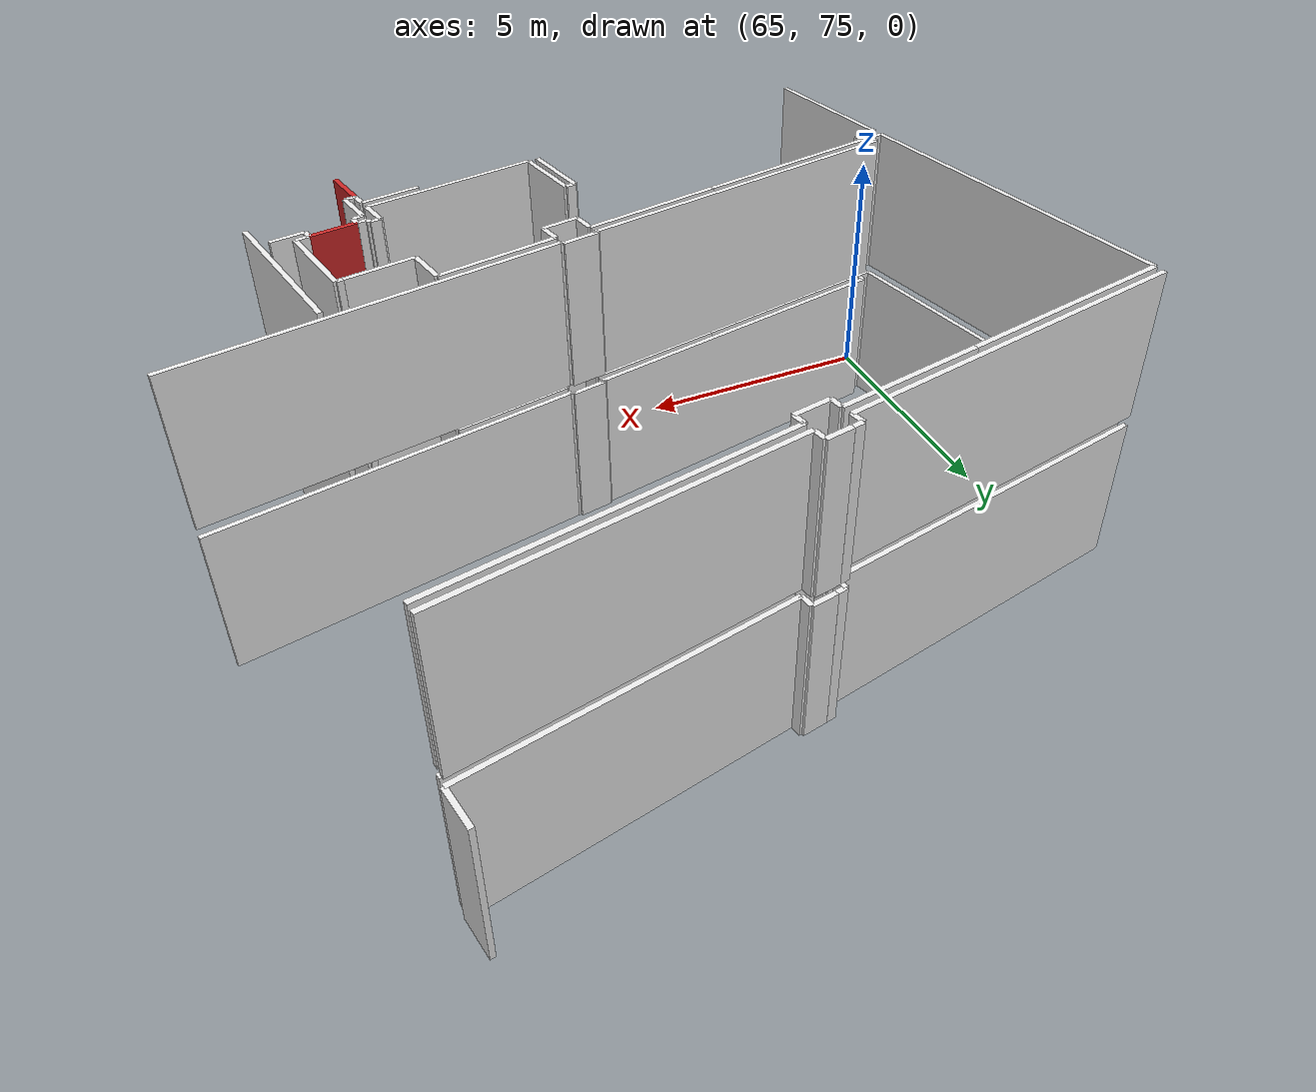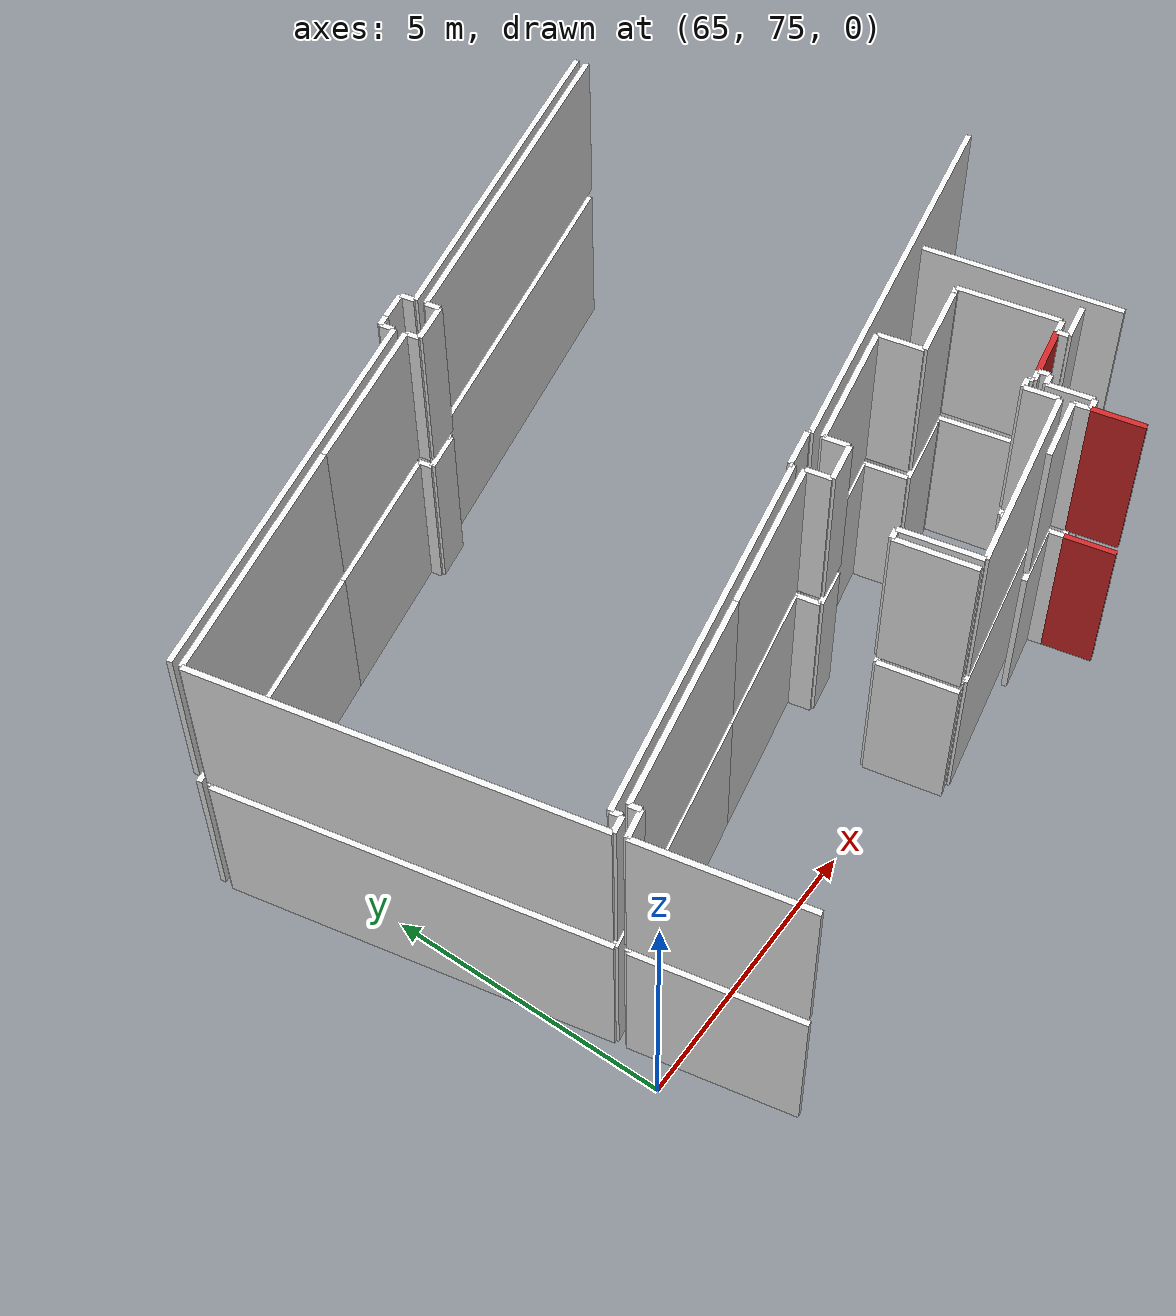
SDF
<sdf version="1.6">
 <world name="default">
  <model name="wall_76.4_75.6_0.0">
   <static>true</static>
   <pose>76.39000000001397 75.57500000018626 1.5 0 0 0.19083110263865674</pose>
   <link name="link">
    <visual name="visual">
     <geometry><box><size>0.8962700485807075 0.1 3</size></box></geometry>
     <material>
      <script><uri>file://media/materials/scripts/gazebo.material</uri><name>Gazebo/Red</name></script>
     </material>
    </visual>
   </link>
  </model>
  <model name="wall_75.8_74.0_0.0">
   <static>true</static>
   <pose>75.83999999999651 74.0 1.5 0 0 -1.3690339824572944</pose>
   <link name="link">
    <visual name="visual">
     <geometry><box><size>0.8982204628045334 0.1 3</size></box></geometry>
     <material>
      <script><uri>file://media/materials/scripts/gazebo.material</uri><name>Gazebo/Red</name></script>
     </material>
    </visual>
   </link>
  </model>
  <model name="wall_77.5_76.7_0.0">
   <static>true</static>
   <pose>77.5 76.67500000004657 1.5 0 0 1.7653199818507113</pose>
   <link name="link">
    <visual name="visual">
     <geometry><box><size>3.414395993534876 0.1 3</size></box></geometry>
     <material>
      <script><uri>file://media/materials/scripts/gazebo.material</uri><name>Gazebo/White</name></script>
     </material>
    </visual>
   </link>
  </model>
  <model name="wall_67.4_83.5_0.0">
   <static>true</static>
   <pose>67.40499999999884 83.54000000003725 1.5 0 0 0.1954353271778743</pose>
   <link name="link">
    <visual name="visual">
     <geometry><box><size>7.003320641070759 0.1 3</size></box></geometry>
     <material>
      <script><uri>file://media/materials/scripts/gazebo.material</uri><name>Gazebo/White</name></script>
     </material>
    </visual>
   </link>
  </model>
  <model name="wall_70.8_84.3_0.0">
   <static>true</static>
   <pose>70.81500000000233 84.34000000008382 1.5 0 0 1.7761917163720695</pose>
   <link name="link">
    <visual name="visual">
     <geometry><box><size>0.24515301321506852 0.1 3</size></box></geometry>
     <material>
      <script><uri>file://media/materials/scripts/gazebo.material</uri><name>Gazebo/White</name></script>
     </material>
    </visual>
   </link>
  </model>
  <model name="wall_70.9_84.5_0.0">
   <static>true</static>
   <pose>70.88499999998021 84.47999999998137 1.5 0 0 0.20749622662047904</pose>
   <link name="link">
    <visual name="visual">
     <geometry><box><size>0.19416487839942884 0.1 3</size></box></geometry>
     <material>
      <script><uri>file://media/materials/scripts/gazebo.material</uri><name>Gazebo/White</name></script>
     </material>
    </visual>
   </link>
  </model>
  <model name="wall_71.2_84.5_0.0">
   <static>true</static>
   <pose>71.22499999997672 84.5449999999255 1.5 0 0 0.18164882970920815</pose>
   <link name="link">
    <visual name="visual">
     <geometry><box><size>0.49819674824716687 0.1 3</size></box></geometry>
     <material>
      <script><uri>file://media/materials/scripts/gazebo.material</uri><name>Gazebo/White</name></script>
     </material>
    </visual>
   </link>
  </model>
  <model name="wall_71.5_84.5_0.0">
   <static>true</static>
   <pose>71.49499999999534 84.46499999985099 1.5 0 0 -1.3734007667659154</pose>
   <link name="link">
    <visual name="visual">
     <geometry><box><size>0.2549509756887716 0.1 3</size></box></geometry>
     <material>
      <script><uri>file://media/materials/scripts/gazebo.material</uri><name>Gazebo/White</name></script>
     </material>
    </visual>
   </link>
  </model>
  <model name="wall_74.5_84.9_0.0">
   <static>true</static>
   <pose>74.52000000001863 84.93499999982305 1.5 0 0 0.19579248330455945</pose>
   <link name="link">
    <visual name="visual">
     <geometry><box><size>6.116870114680138 0.1 3</size></box></geometry>
     <material>
      <script><uri>file://media/materials/scripts/gazebo.material</uri><name>Gazebo/White</name></script>
     </material>
    </visual>
   </link>
  </model>
  <model name="wall_77.4_85.9_0.0">
   <static>true</static>
   <pose>77.44500000000698 85.9199999999255 1.5 0 0 1.7607846146803983</pose>
   <link name="link">
    <visual name="visual">
     <geometry><box><size>0.7942921379528988 0.1 3</size></box></geometry>
     <material>
      <script><uri>file://media/materials/scripts/gazebo.material</uri><name>Gazebo/White</name></script>
     </material>
    </visual>
   </link>
  </model>
  <model name="wall_74.6_84.7_0.0">
   <static>true</static>
   <pose>74.55499999999302 84.74499999987893 1.5 0 0 -2.945481614557841</pose>
   <link name="link">
    <visual name="visual">
     <geometry><box><size>6.107061486488853 0.1 3</size></box></geometry>
     <material>
      <script><uri>file://media/materials/scripts/gazebo.material</uri><name>Gazebo/White</name></script>
     </material>
    </visual>
   </link>
  </model>
  <model name="wall_71.6_84.0_0.0">
   <static>true</static>
   <pose>71.58499999999185 84.03000000002794 1.5 0 0 -1.365400937450167</pose>
   <link name="link">
    <visual name="visual">
     <geometry><box><size>0.24515301320319682 0.1 3</size></box></geometry>
     <material>
      <script><uri>file://media/materials/scripts/gazebo.material</uri><name>Gazebo/White</name></script>
     </material>
    </visual>
   </link>
  </model>
  <model name="wall_71.3_83.8_0.0">
   <static>true</static>
   <pose>71.26999999998952 83.84499999997206 1.5 0 0 -2.9526954722081817</pose>
   <link name="link">
    <visual name="visual">
     <geometry><box><size>0.6923149572864328 0.1 3</size></box></geometry>
     <material>
      <script><uri>file://media/materials/scripts/gazebo.material</uri><name>Gazebo/White</name></script>
     </material>
    </visual>
   </link>
  </model>
  <model name="wall_70.9_83.9_0.0">
   <static>true</static>
   <pose>70.90499999999884 83.89999999990687 1.5 0 0 1.7761917157522207</pose>
   <link name="link">
    <visual name="visual">
     <geometry><box><size>0.24515301365907008 0.1 3</size></box></geometry>
     <material>
      <script><uri>file://media/materials/scripts/gazebo.material</uri><name>Gazebo/White</name></script>
     </material>
    </visual>
   </link>
  </model>
  <model name="wall_69.5_83.8_0.0">
   <static>true</static>
   <pose>69.54999999998836 83.76000000000931 1.5 0 0 -2.948538600466728</pose>
   <link name="link">
    <visual name="visual">
     <geometry><box><size>2.7103505308710134 0.1 3</size></box></geometry>
     <material>
      <script><uri>file://media/materials/scripts/gazebo.material</uri><name>Gazebo/White</name></script>
     </material>
    </visual>
   </link>
  </model>
  <model name="wall_66.1_83.1_0.0">
   <static>true</static>
   <pose>66.10999999998603 83.0800000000745 1.5 0 0 -2.9451086705483704</pose>
   <link name="link">
    <visual name="visual">
     <geometry><box><size>4.30278979262453 0.1 3</size></box></geometry>
     <material>
      <script><uri>file://media/materials/scripts/gazebo.material</uri><name>Gazebo/White</name></script>
     </material>
    </visual>
   </link>
  </model>
  <model name="wall_64.7_79.3_0.0">
   <static>true</static>
   <pose>64.66500000000815 79.34000000008382 1.5 0 0 -1.3731111637109774</pose>
   <link name="link">
    <visual name="visual">
     <geometry><box><size>6.771890430431879 0.1 3</size></box></geometry>
     <material>
      <script><uri>file://media/materials/scripts/gazebo.material</uri><name>Gazebo/White</name></script>
     </material>
    </visual>
   </link>
  </model>
  <model name="wall_65.5_76.1_0.0">
   <static>true</static>
   <pose>65.48000000001048 76.05000000004657 1.5 0 0 0.19739556003644376</pose>
   <link name="link">
    <visual name="visual">
     <geometry><box><size>0.30594117081511046 0.1 3</size></box></geometry>
     <material>
      <script><uri>file://media/materials/scripts/gazebo.material</uri><name>Gazebo/White</name></script>
     </material>
    </visual>
   </link>
  </model>
  <model name="wall_65.6_76.2_0.0">
   <static>true</static>
   <pose>65.61000000001513 76.1699999999255 1.5 0 0 1.7894652729085172</pose>
   <link name="link">
    <visual name="visual">
     <geometry><box><size>0.18439088885038563 0.1 3</size></box></geometry>
     <material>
      <script><uri>file://media/materials/scripts/gazebo.material</uri><name>Gazebo/White</name></script>
     </material>
    </visual>
   </link>
  </model>
  <model name="wall_68.9_76.9_0.0">
   <static>true</static>
   <pose>68.88000000000466 76.91499999980442 1.5 0 0 0.19651862351580723</pose>
   <link name="link">
    <visual name="visual">
     <geometry><box><size>6.709135562767745 0.1 3</size></box></geometry>
     <material>
      <script><uri>file://media/materials/scripts/gazebo.material</uri><name>Gazebo/White</name></script>
     </material>
    </visual>
   </link>
  </model>
  <model name="wall_72.2_77.6_0.0">
   <static>true</static>
   <pose>72.16499999997905 77.59499999997206 1.5 0 0 1.7681918857492749</pose>
   <link name="link">
    <visual name="visual">
     <geometry><box><size>0.05099019541172539 0.1 3</size></box></geometry>
     <material>
      <script><uri>file://media/materials/scripts/gazebo.material</uri><name>Gazebo/White</name></script>
     </material>
    </visual>
   </link>
  </model>
  <model name="wall_72.5_77.7_0.0">
   <static>true</static>
   <pose>72.5 77.68500000005588 1.5 0 0 0.18889718070517353</pose>
   <link name="link">
    <visual name="visual">
     <geometry><box><size>0.6923149572561651 0.1 3</size></box></geometry>
     <material>
      <script><uri>file://media/materials/scripts/gazebo.material</uri><name>Gazebo/White</name></script>
     </material>
    </visual>
   </link>
  </model>
  <model name="wall_72.8_77.7_0.0">
   <static>true</static>
   <pose>72.84500000000116 77.72500000009313 1.5 0 0 -1.3734007671688915</pose>
   <link name="link">
    <visual name="visual">
     <geometry><box><size>0.05099019494369148 0.1 3</size></box></geometry>
     <material>
      <script><uri>file://media/materials/scripts/gazebo.material</uri><name>Gazebo/White</name></script>
     </material>
    </visual>
   </link>
  </model>
  <model name="wall_76.3_78.4_0.0">
   <static>true</static>
   <pose>76.33999999999651 78.39000000013039 1.5 0 0 0.19519049174249012</pose>
   <link name="link">
    <visual name="visual">
     <geometry><box><size>7.115110680814747 0.1 3</size></box></geometry>
     <material>
      <script><uri>file://media/materials/scripts/gazebo.material</uri><name>Gazebo/White</name></script>
     </material>
    </visual>
   </link>
  </model>
  <model name="wall_65.6_74.4_0.0">
   <static>true</static>
   <pose>65.64999999999418 74.41499999980442 1.5 0 0 -1.3740852295395196</pose>
   <link name="link">
    <visual name="visual">
     <geometry><box><size>2.8652574055940305 0.1 3</size></box></geometry>
     <material>
      <script><uri>file://media/materials/scripts/gazebo.material</uri><name>Gazebo/White</name></script>
     </material>
    </visual>
   </link>
  </model>
  <model name="wall_72.0_74.9_0.0">
   <static>true</static>
   <pose>71.97500000000582 74.9199999999255 1.5 0 0 1.7640078106303387</pose>
   <link name="link">
    <visual name="visual">
     <geometry><box><size>1.4061649973136765 0.1 3</size></box></geometry>
     <material>
      <script><uri>file://media/materials/scripts/gazebo.material</uri><name>Gazebo/White</name></script>
     </material>
    </visual>
   </link>
  </model>
  <model name="wall_71.9_75.6_0.0">
   <static>true</static>
   <pose>71.93500000002678 75.62999999988824 1.5 0 0 0.20749622662047904</pose>
   <link name="link">
    <visual name="visual">
     <geometry><box><size>0.19416487839942884 0.1 3</size></box></geometry>
     <material>
      <script><uri>file://media/materials/scripts/gazebo.material</uri><name>Gazebo/White</name></script>
     </material>
    </visual>
   </link>
  </model>
  <model name="wall_72.2_75.0_0.0">
   <static>true</static>
   <pose>72.1700000000128 74.95999999996275 1.5 0 0 -1.3706152588342921</pose>
   <link name="link">
    <visual name="visual">
     <geometry><box><size>1.408119313011009 0.1 3</size></box></geometry>
     <material>
      <script><uri>file://media/materials/scripts/gazebo.material</uri><name>Gazebo/White</name></script>
     </material>
    </visual>
   </link>
  </model>
  <model name="wall_74.0_74.6_0.0">
   <static>true</static>
   <pose>73.98000000001048 74.60000000009313 1.5 0 0 0.19509141650355566</pose>
   <link name="link">
    <visual name="visual">
     <geometry><box><size>3.404585143650806 0.1 3</size></box></geometry>
     <material>
      <script><uri>file://media/materials/scripts/gazebo.material</uri><name>Gazebo/White</name></script>
     </material>
    </visual>
   </link>
  </model>
  <model name="wall_75.6_75.2_0.0">
   <static>true</static>
   <pose>75.59000000002561 75.21999999997206 1.5 0 0 1.7748143065135507</pose>
   <link name="link">
    <visual name="visual">
     <geometry><box><size>0.5922837154144474 0.1 3</size></box></geometry>
     <material>
      <script><uri>file://media/materials/scripts/gazebo.material</uri><name>Gazebo/White</name></script>
     </material>
    </visual>
   </link>
  </model>
  <model name="wall_75.6_75.5_0.0">
   <static>true</static>
   <pose>75.63000000000466 75.52999999979511 1.5 0 0 0.1973955600737564</pose>
   <link name="link">
    <visual name="visual">
     <geometry><box><size>0.20396078050535543 0.1 3</size></box></geometry>
     <material>
      <script><uri>file://media/materials/scripts/gazebo.material</uri><name>Gazebo/White</name></script>
     </material>
    </visual>
   </link>
  </model>
  <model name="wall_75.7_75.5_0.0">
   <static>true</static>
   <pose>75.73999999999069 75.5 1.5 0 0 -1.3734007660495133</pose>
   <link name="link">
    <visual name="visual">
     <geometry><box><size>0.10198038991021388 0.1 3</size></box></geometry>
     <material>
      <script><uri>file://media/materials/scripts/gazebo.material</uri><name>Gazebo/White</name></script>
     </material>
    </visual>
   </link>
  </model>
  <model name="wall_75.9_75.5_0.0">
   <static>true</static>
   <pose>75.85000000000582 75.47000000020489 1.5 0 0 0.19739556001778746</pose>
   <link name="link">
    <visual name="visual">
     <geometry><box><size>0.20396078056243275 0.1 3</size></box></geometry>
     <material>
      <script><uri>file://media/materials/scripts/gazebo.material</uri><name>Gazebo/White</name></script>
     </material>
    </visual>
   </link>
  </model>
  <model name="wall_77.0_75.7_0.0">
   <static>true</static>
   <pose>76.9550000000163 75.68500000005588 1.5 0 0 0.19739555913347878</pose>
   <link name="link">
    <visual name="visual">
     <geometry><box><size>0.25495097564310976 0.1 3</size></box></geometry>
     <material>
      <script><uri>file://media/materials/scripts/gazebo.material</uri><name>Gazebo/White</name></script>
     </material>
    </visual>
   </link>
  </model>
  <model name="wall_76.9_76.6_0.0">
   <static>true</static>
   <pose>76.90499999999884 76.5800000000745 1.5 0 0 1.7692968585652145</pose>
   <link name="link">
    <visual name="visual">
     <geometry><box><size>1.774852106740809 0.1 3</size></box></geometry>
     <material>
      <script><uri>file://media/materials/scripts/gazebo.material</uri><name>Gazebo/White</name></script>
     </material>
    </visual>
   </link>
  </model>
  <model name="wall_76.7_77.4_0.0">
   <static>true</static>
   <pose>76.6699999999837 77.43500000005588 1.5 0 0 -2.896613988408541</pose>
   <link name="link">
    <visual name="visual">
     <geometry><box><size>0.12369316882725834 0.1 3</size></box></geometry>
     <material>
      <script><uri>file://media/materials/scripts/gazebo.material</uri><name>Gazebo/White</name></script>
     </material>
    </visual>
   </link>
  </model>
  <model name="wall_76.0_77.3_0.0">
   <static>true</static>
   <pose>75.95999999999185 77.2949999999255 1.5 0 0 -2.9516043656694166</pose>
   <link name="link">
    <visual name="visual">
     <geometry><box><size>1.3238202294759405 0.1 3</size></box></geometry>
     <material>
      <script><uri>file://media/materials/scripts/gazebo.material</uri><name>Gazebo/White</name></script>
     </material>
    </visual>
   </link>
  </model>
  <model name="wall_75.2_77.6_0.0">
   <static>true</static>
   <pose>75.23000000001048 77.56000000005588 1.5 0 0 1.7731179550758815</pose>
   <link name="link">
    <visual name="visual">
     <geometry><box><size>0.7962411697460803 0.1 3</size></box></geometry>
     <material>
      <script><uri>file://media/materials/scripts/gazebo.material</uri><name>Gazebo/White</name></script>
     </material>
    </visual>
   </link>
  </model>
  <model name="wall_74.0_77.7_0.0">
   <static>true</static>
   <pose>74.02000000001863 77.72500000009313 1.5 0 0 -2.9450481572857363</pose>
   <link name="link">
    <visual name="visual">
     <geometry><box><size>2.3043654224557644 0.1 3</size></box></geometry>
     <material>
      <script><uri>file://media/materials/scripts/gazebo.material</uri><name>Gazebo/White</name></script>
     </material>
    </visual>
   </link>
  </model>
  <model name="wall_72.9_77.3_0.0">
   <static>true</static>
   <pose>72.93499999999767 77.28499999991618 1.5 0 0 -1.364472432915976</pose>
   <link name="link">
    <visual name="visual">
     <geometry><box><size>0.4393176528871807 0.1 3</size></box></geometry>
     <material>
      <script><uri>file://media/materials/scripts/gazebo.material</uri><name>Gazebo/White</name></script>
     </material>
    </visual>
   </link>
  </model>
  <model name="wall_72.6_77.0_0.0">
   <static>true</static>
   <pose>72.63499999998021 77.00499999988824 1.5 0 0 -2.9553698133356825</pose>
   <link name="link">
    <visual name="visual">
     <geometry><box><size>0.7021395872432744 0.1 3</size></box></geometry>
     <material>
      <script><uri>file://media/materials/scripts/gazebo.material</uri><name>Gazebo/White</name></script>
     </material>
    </visual>
   </link>
  </model>
  <model name="wall_72.2_77.2_0.0">
   <static>true</static>
   <pose>72.24499999999534 77.15999999991618 1.5 0 0 1.77255867106901</pose>
   <link name="link">
    <visual name="visual">
     <geometry><box><size>0.44911023139643436 0.1 3</size></box></geometry>
     <material>
      <script><uri>file://media/materials/scripts/gazebo.material</uri><name>Gazebo/White</name></script>
     </material>
    </visual>
   </link>
  </model>
  <model name="wall_70.9_77.1_0.0">
   <static>true</static>
   <pose>70.875 77.11499999999069 1.5 0 0 -2.9441970938159456</pose>
   <link name="link">
    <visual name="visual">
     <geometry><box><size>2.702480342186824 0.1 3</size></box></geometry>
     <material>
      <script><uri>file://media/materials/scripts/gazebo.material</uri><name>Gazebo/White</name></script>
     </material>
    </visual>
   </link>
  </model>
  <model name="wall_67.7_76.5_0.0">
   <static>true</static>
   <pose>67.68499999999767 76.47999999998137 1.5 0 0 -2.945744281719576</pose>
   <link name="link">
    <visual name="visual">
     <geometry><box><size>3.8026964117835984 0.1 3</size></box></geometry>
     <material>
      <script><uri>file://media/materials/scripts/gazebo.material</uri><name>Gazebo/White</name></script>
     </material>
    </visual>
   </link>
  </model>
  <model name="wall_65.8_76.0_0.0">
   <static>true</static>
   <pose>65.83999999999651 76.01499999989755 1.5 0 0 -1.363300100406013</pose>
   <link name="link">
    <visual name="visual">
     <geometry><box><size>0.19416487833047835 0.1 3</size></box></geometry>
     <material>
      <script><uri>file://media/materials/scripts/gazebo.material</uri><name>Gazebo/White</name></script>
     </material>
    </visual>
   </link>
  </model>
  <model name="wall_65.6_75.9_0.0">
   <static>true</static>
   <pose>65.61499999999069 75.86999999987893 1.5 0 0 -2.9402755450289626</pose>
   <link name="link">
    <visual name="visual">
     <geometry><box><size>0.5000999900114971 0.1 3</size></box></geometry>
     <material>
      <script><uri>file://media/materials/scripts/gazebo.material</uri><name>Gazebo/White</name></script>
     </material>
    </visual>
   </link>
  </model>
  <model name="wall_75.7_74.6_0.0">
   <static>true</static>
   <pose>75.72000000000116 74.58499999996275 1.5 0 0 1.7748143063542596</pose>
   <link name="link">
    <visual name="visual">
     <geometry><box><size>0.2961418579352255 0.1 3</size></box></geometry>
     <material>
      <script><uri>file://media/materials/scripts/gazebo.material</uri><name>Gazebo/White</name></script>
     </material>
    </visual>
   </link>
  </model>
  <model name="wall_75.1_74.6_0.0">
   <static>true</static>
   <pose>75.13500000000931 74.61999999987893 1.5 0 0 -2.945930194077732</pose>
   <link name="link">
    <visual name="visual">
     <geometry><box><size>1.131591799218755 0.1 3</size></box></geometry>
     <material>
      <script><uri>file://media/materials/scripts/gazebo.material</uri><name>Gazebo/White</name></script>
     </material>
    </visual>
   </link>
  </model>
  <model name="wall_76.0_75.4_0.0">
   <static>true</static>
   <pose>75.97000000000116 75.39500000001863 1.5 0 0 -1.3633001009000834</pose>
   <link name="link">
    <visual name="visual">
     <geometry><box><size>0.1941648787861511 0.1 3</size></box></geometry>
     <material>
      <script><uri>file://media/materials/scripts/gazebo.material</uri><name>Gazebo/White</name></script>
     </material>
    </visual>
   </link>
  </model>
  <model name="wall_75.9_75.3_0.0">
   <static>true</static>
   <pose>75.88999999998487 75.27999999979511 1.5 0 0 -2.9441970935720057</pose>
   <link name="link">
    <visual name="visual">
     <geometry><box><size>0.20396078056243275 0.1 3</size></box></geometry>
     <material>
      <script><uri>file://media/materials/scripts/gazebo.material</uri><name>Gazebo/White</name></script>
     </material>
    </visual>
   </link>
  </model>
  <model name="wall_75.9_74.9_0.0">
   <static>true</static>
   <pose>75.86999999999534 74.86999999987893 1.5 0 0 -1.3684746983247826</pose>
   <link name="link">
    <visual name="visual">
     <geometry><box><size>0.7962411693016136 0.1 3</size></box></geometry>
     <material>
      <script><uri>file://media/materials/scripts/gazebo.material</uri><name>Gazebo/White</name></script>
     </material>
    </visual>
   </link>
  </model>
  <model name="wall_75.9_74.5_0.0">
   <static>true</static>
   <pose>75.85000000000582 74.45999999996275 1.5 0 0 -2.9441970935720057</pose>
   <link name="link">
    <visual name="visual">
     <geometry><box><size>0.20396078056243275 0.1 3</size></box></geometry>
     <material>
      <script><uri>file://media/materials/scripts/gazebo.material</uri><name>Gazebo/White</name></script>
     </material>
    </visual>
   </link>
  </model>
  <model name="wall_77.2_75.5_0.0">
   <static>true</static>
   <pose>77.19000000000233 75.53000000002794 1.5 0 0 -2.956244704132245</pose>
   <link name="link">
    <visual name="visual">
     <geometry><box><size>0.6511528237924986 0.1 3</size></box></geometry>
     <material>
      <script><uri>file://media/materials/scripts/gazebo.material</uri><name>Gazebo/White</name></script>
     </material>
    </visual>
   </link>
  </model>
  <model name="wall_76.9_75.6_0.0">
   <static>true</static>
   <pose>76.85000000000582 75.56500000017695 1.5 0 0 1.77829255318378</pose>
   <link name="link">
    <visual name="visual">
     <geometry><box><size>0.19416487833047835 0.1 3</size></box></geometry>
     <material>
      <script><uri>file://media/materials/scripts/gazebo.material</uri><name>Gazebo/White</name></script>
     </material>
    </visual>
   </link>
  </model>
  <model name="wall_76.4_75.6_3.2">
   <static>true</static>
   <pose>76.39000000001397 75.57500000018626 4.7 0 0 0.19083110263865674</pose>
   <link name="link">
    <visual name="visual">
     <geometry><box><size>0.8962700485807075 0.1 3</size></box></geometry>
     <material>
      <script><uri>file://media/materials/scripts/gazebo.material</uri><name>Gazebo/Red</name></script>
     </material>
    </visual>
   </link>
  </model>
  <model name="wall_75.8_74.0_3.2">
   <static>true</static>
   <pose>75.83999999999651 74.0 4.7 0 0 -1.3690339824572944</pose>
   <link name="link">
    <visual name="visual">
     <geometry><box><size>0.8982204628045334 0.1 3</size></box></geometry>
     <material>
      <script><uri>file://media/materials/scripts/gazebo.material</uri><name>Gazebo/Red</name></script>
     </material>
    </visual>
   </link>
  </model>
  <model name="wall_77.5_76.7_3.2">
   <static>true</static>
   <pose>77.5 76.67500000004657 4.7 0 0 1.7653199818507113</pose>
   <link name="link">
    <visual name="visual">
     <geometry><box><size>3.414395993534876 0.1 3</size></box></geometry>
     <material>
      <script><uri>file://media/materials/scripts/gazebo.material</uri><name>Gazebo/White</name></script>
     </material>
    </visual>
   </link>
  </model>
  <model name="wall_67.4_83.5_3.2">
   <static>true</static>
   <pose>67.40499999999884 83.54000000003725 4.7 0 0 0.1954353271778743</pose>
   <link name="link">
    <visual name="visual">
     <geometry><box><size>7.003320641070759 0.1 3</size></box></geometry>
     <material>
      <script><uri>file://media/materials/scripts/gazebo.material</uri><name>Gazebo/White</name></script>
     </material>
    </visual>
   </link>
  </model>
  <model name="wall_70.8_84.3_3.2">
   <static>true</static>
   <pose>70.81500000000233 84.34000000008382 4.7 0 0 1.7761917163720695</pose>
   <link name="link">
    <visual name="visual">
     <geometry><box><size>0.24515301321506852 0.1 3</size></box></geometry>
     <material>
      <script><uri>file://media/materials/scripts/gazebo.material</uri><name>Gazebo/White</name></script>
     </material>
    </visual>
   </link>
  </model>
  <model name="wall_70.9_84.5_3.2">
   <static>true</static>
   <pose>70.88499999998021 84.47999999998137 4.7 0 0 0.20749622662047904</pose>
   <link name="link">
    <visual name="visual">
     <geometry><box><size>0.19416487839942884 0.1 3</size></box></geometry>
     <material>
      <script><uri>file://media/materials/scripts/gazebo.material</uri><name>Gazebo/White</name></script>
     </material>
    </visual>
   </link>
  </model>
  <model name="wall_71.2_84.5_3.2">
   <static>true</static>
   <pose>71.22499999997672 84.5449999999255 4.7 0 0 0.18164882970920815</pose>
   <link name="link">
    <visual name="visual">
     <geometry><box><size>0.49819674824716687 0.1 3</size></box></geometry>
     <material>
      <script><uri>file://media/materials/scripts/gazebo.material</uri><name>Gazebo/White</name></script>
     </material>
    </visual>
   </link>
  </model>
  <model name="wall_71.5_84.5_3.2">
   <static>true</static>
   <pose>71.49499999999534 84.46499999985099 4.7 0 0 -1.3734007667659154</pose>
   <link name="link">
    <visual name="visual">
     <geometry><box><size>0.2549509756887716 0.1 3</size></box></geometry>
     <material>
      <script><uri>file://media/materials/scripts/gazebo.material</uri><name>Gazebo/White</name></script>
     </material>
    </visual>
   </link>
  </model>
  <model name="wall_74.5_84.9_3.2">
   <static>true</static>
   <pose>74.52000000001863 84.93499999982305 4.7 0 0 0.19579248330455945</pose>
   <link name="link">
    <visual name="visual">
     <geometry><box><size>6.116870114680138 0.1 3</size></box></geometry>
     <material>
      <script><uri>file://media/materials/scripts/gazebo.material</uri><name>Gazebo/White</name></script>
     </material>
    </visual>
   </link>
  </model>
  <model name="wall_74.6_84.7_3.2">
   <static>true</static>
   <pose>74.55499999999302 84.74499999987893 4.7 0 0 -2.945481614557841</pose>
   <link name="link">
    <visual name="visual">
     <geometry><box><size>6.107061486488853 0.1 3</size></box></geometry>
     <material>
      <script><uri>file://media/materials/scripts/gazebo.material</uri><name>Gazebo/White</name></script>
     </material>
    </visual>
   </link>
  </model>
  <model name="wall_71.6_84.0_3.2">
   <static>true</static>
   <pose>71.58499999999185 84.03000000002794 4.7 0 0 -1.365400937450167</pose>
   <link name="link">
    <visual name="visual">
     <geometry><box><size>0.24515301320319682 0.1 3</size></box></geometry>
     <material>
      <script><uri>file://media/materials/scripts/gazebo.material</uri><name>Gazebo/White</name></script>
     </material>
    </visual>
   </link>
  </model>
  <model name="wall_71.3_83.8_3.2">
   <static>true</static>
   <pose>71.26999999998952 83.84499999997206 4.7 0 0 -2.9526954722081817</pose>
   <link name="link">
    <visual name="visual">
     <geometry><box><size>0.6923149572864328 0.1 3</size></box></geometry>
     <material>
      <script><uri>file://media/materials/scripts/gazebo.material</uri><name>Gazebo/White</name></script>
     </material>
    </visual>
   </link>
  </model>
  <model name="wall_70.9_83.9_3.2">
   <static>true</static>
   <pose>70.90499999999884 83.89999999990687 4.7 0 0 1.7761917157522207</pose>
   <link name="link">
    <visual name="visual">
     <geometry><box><size>0.24515301365907008 0.1 3</size></box></geometry>
     <material>
      <script><uri>file://media/materials/scripts/gazebo.material</uri><name>Gazebo/White</name></script>
     </material>
    </visual>
   </link>
  </model>
  <model name="wall_69.5_83.8_3.2">
   <static>true</static>
   <pose>69.54999999998836 83.76000000000931 4.7 0 0 -2.948538600466728</pose>
   <link name="link">
    <visual name="visual">
     <geometry><box><size>2.7103505308710134 0.1 3</size></box></geometry>
     <material>
      <script><uri>file://media/materials/scripts/gazebo.material</uri><name>Gazebo/White</name></script>
     </material>
    </visual>
   </link>
  </model>
  <model name="wall_66.1_83.1_3.2">
   <static>true</static>
   <pose>66.10999999998603 83.0800000000745 4.7 0 0 -2.9451086705483704</pose>
   <link name="link">
    <visual name="visual">
     <geometry><box><size>4.30278979262453 0.1 3</size></box></geometry>
     <material>
      <script><uri>file://media/materials/scripts/gazebo.material</uri><name>Gazebo/White</name></script>
     </material>
    </visual>
   </link>
  </model>
  <model name="wall_64.7_79.3_3.2">
   <static>true</static>
   <pose>64.66500000000815 79.34000000008382 4.7 0 0 -1.3731111637109774</pose>
   <link name="link">
    <visual name="visual">
     <geometry><box><size>6.771890430431879 0.1 3</size></box></geometry>
     <material>
      <script><uri>file://media/materials/scripts/gazebo.material</uri><name>Gazebo/White</name></script>
     </material>
    </visual>
   </link>
  </model>
  <model name="wall_65.5_76.1_3.2">
   <static>true</static>
   <pose>65.48000000001048 76.05000000004657 4.7 0 0 0.19739556003644376</pose>
   <link name="link">
    <visual name="visual">
     <geometry><box><size>0.30594117081511046 0.1 3</size></box></geometry>
     <material>
      <script><uri>file://media/materials/scripts/gazebo.material</uri><name>Gazebo/White</name></script>
     </material>
    </visual>
   </link>
  </model>
  <model name="wall_65.6_76.2_3.2">
   <static>true</static>
   <pose>65.61000000001513 76.1699999999255 4.7 0 0 1.7894652729085172</pose>
   <link name="link">
    <visual name="visual">
     <geometry><box><size>0.18439088885038563 0.1 3</size></box></geometry>
     <material>
      <script><uri>file://media/materials/scripts/gazebo.material</uri><name>Gazebo/White</name></script>
     </material>
    </visual>
   </link>
  </model>
  <model name="wall_68.9_76.9_3.2">
   <static>true</static>
   <pose>68.88000000000466 76.91499999980442 4.7 0 0 0.19651862351580723</pose>
   <link name="link">
    <visual name="visual">
     <geometry><box><size>6.709135562767745 0.1 3</size></box></geometry>
     <material>
      <script><uri>file://media/materials/scripts/gazebo.material</uri><name>Gazebo/White</name></script>
     </material>
    </visual>
   </link>
  </model>
  <model name="wall_72.2_77.6_3.2">
   <static>true</static>
   <pose>72.16499999997905 77.59499999997206 4.7 0 0 1.7681918857492749</pose>
   <link name="link">
    <visual name="visual">
     <geometry><box><size>0.05099019541172539 0.1 3</size></box></geometry>
     <material>
      <script><uri>file://media/materials/scripts/gazebo.material</uri><name>Gazebo/White</name></script>
     </material>
    </visual>
   </link>
  </model>
  <model name="wall_72.5_77.7_3.2">
   <static>true</static>
   <pose>72.5 77.68500000005588 4.7 0 0 0.18889718070517353</pose>
   <link name="link">
    <visual name="visual">
     <geometry><box><size>0.6923149572561651 0.1 3</size></box></geometry>
     <material>
      <script><uri>file://media/materials/scripts/gazebo.material</uri><name>Gazebo/White</name></script>
     </material>
    </visual>
   </link>
  </model>
  <model name="wall_72.8_77.7_3.2">
   <static>true</static>
   <pose>72.84500000000116 77.72500000009313 4.7 0 0 -1.3734007671688915</pose>
   <link name="link">
    <visual name="visual">
     <geometry><box><size>0.05099019494369148 0.1 3</size></box></geometry>
     <material>
      <script><uri>file://media/materials/scripts/gazebo.material</uri><name>Gazebo/White</name></script>
     </material>
    </visual>
   </link>
  </model>
  <model name="wall_76.3_78.4_3.2">
   <static>true</static>
   <pose>76.33999999999651 78.39000000013039 4.7 0 0 0.19519049174249012</pose>
   <link name="link">
    <visual name="visual">
     <geometry><box><size>7.115110680814747 0.1 3</size></box></geometry>
     <material>
      <script><uri>file://media/materials/scripts/gazebo.material</uri><name>Gazebo/White</name></script>
     </material>
    </visual>
   </link>
  </model>
  <model name="wall_65.6_74.4_3.2">
   <static>true</static>
   <pose>65.64999999999418 74.41499999980442 4.7 0 0 -1.3740852295395196</pose>
   <link name="link">
    <visual name="visual">
     <geometry><box><size>2.8652574055940305 0.1 3</size></box></geometry>
     <material>
      <script><uri>file://media/materials/scripts/gazebo.material</uri><name>Gazebo/White</name></script>
     </material>
    </visual>
   </link>
  </model>
  <model name="wall_72.0_74.9_3.2">
   <static>true</static>
   <pose>71.97500000000582 74.9199999999255 4.7 0 0 1.7640078106303387</pose>
   <link name="link">
    <visual name="visual">
     <geometry><box><size>1.4061649973136765 0.1 3</size></box></geometry>
     <material>
      <script><uri>file://media/materials/scripts/gazebo.material</uri><name>Gazebo/White</name></script>
     </material>
    </visual>
   </link>
  </model>
  <model name="wall_71.9_75.6_3.2">
   <static>true</static>
   <pose>71.93500000002678 75.62999999988824 4.7 0 0 0.20749622662047904</pose>
   <link name="link">
    <visual name="visual">
     <geometry><box><size>0.19416487839942884 0.1 3</size></box></geometry>
     <material>
      <script><uri>file://media/materials/scripts/gazebo.material</uri><name>Gazebo/White</name></script>
     </material>
    </visual>
   </link>
  </model>
  <model name="wall_72.2_75.0_3.2">
   <static>true</static>
   <pose>72.1700000000128 74.95999999996275 4.7 0 0 -1.3706152588342921</pose>
   <link name="link">
    <visual name="visual">
     <geometry><box><size>1.408119313011009 0.1 3</size></box></geometry>
     <material>
      <script><uri>file://media/materials/scripts/gazebo.material</uri><name>Gazebo/White</name></script>
     </material>
    </visual>
   </link>
  </model>
  <model name="wall_74.0_74.6_3.2">
   <static>true</static>
   <pose>73.98000000001048 74.60000000009313 4.7 0 0 0.19509141650355566</pose>
   <link name="link">
    <visual name="visual">
     <geometry><box><size>3.404585143650806 0.1 3</size></box></geometry>
     <material>
      <script><uri>file://media/materials/scripts/gazebo.material</uri><name>Gazebo/White</name></script>
     </material>
    </visual>
   </link>
  </model>
  <model name="wall_75.6_75.2_3.2">
   <static>true</static>
   <pose>75.59000000002561 75.21999999997206 4.7 0 0 1.7748143065135507</pose>
   <link name="link">
    <visual name="visual">
     <geometry><box><size>0.5922837154144474 0.1 3</size></box></geometry>
     <material>
      <script><uri>file://media/materials/scripts/gazebo.material</uri><name>Gazebo/White</name></script>
     </material>
    </visual>
   </link>
  </model>
  <model name="wall_75.6_75.5_3.2">
   <static>true</static>
   <pose>75.63000000000466 75.52999999979511 4.7 0 0 0.1973955600737564</pose>
   <link name="link">
    <visual name="visual">
     <geometry><box><size>0.20396078050535543 0.1 3</size></box></geometry>
     <material>
      <script><uri>file://media/materials/scripts/gazebo.material</uri><name>Gazebo/White</name></script>
     </material>
    </visual>
   </link>
  </model>
  <model name="wall_75.7_75.5_3.2">
   <static>true</static>
   <pose>75.73999999999069 75.5 4.7 0 0 -1.3734007660495133</pose>
   <link name="link">
    <visual name="visual">
     <geometry><box><size>0.10198038991021388 0.1 3</size></box></geometry>
     <material>
      <script><uri>file://media/materials/scripts/gazebo.material</uri><name>Gazebo/White</name></script>
     </material>
    </visual>
   </link>
  </model>
  <model name="wall_75.9_75.5_3.2">
   <static>true</static>
   <pose>75.85000000000582 75.47000000020489 4.7 0 0 0.19739556001778746</pose>
   <link name="link">
    <visual name="visual">
     <geometry><box><size>0.20396078056243275 0.1 3</size></box></geometry>
     <material>
      <script><uri>file://media/materials/scripts/gazebo.material</uri><name>Gazebo/White</name></script>
     </material>
    </visual>
   </link>
  </model>
  <model name="wall_77.0_75.7_3.2">
   <static>true</static>
   <pose>76.9550000000163 75.68500000005588 4.7 0 0 0.19739555913347878</pose>
   <link name="link">
    <visual name="visual">
     <geometry><box><size>0.25495097564310976 0.1 3</size></box></geometry>
     <material>
      <script><uri>file://media/materials/scripts/gazebo.material</uri><name>Gazebo/White</name></script>
     </material>
    </visual>
   </link>
  </model>
  <model name="wall_76.9_76.6_3.2">
   <static>true</static>
   <pose>76.90499999999884 76.5800000000745 4.7 0 0 1.7692968585652145</pose>
   <link name="link">
    <visual name="visual">
     <geometry><box><size>1.774852106740809 0.1 3</size></box></geometry>
     <material>
      <script><uri>file://media/materials/scripts/gazebo.material</uri><name>Gazebo/White</name></script>
     </material>
    </visual>
   </link>
  </model>
  <model name="wall_76.7_77.4_3.2">
   <static>true</static>
   <pose>76.6699999999837 77.43500000005588 4.7 0 0 -2.896613988408541</pose>
   <link name="link">
    <visual name="visual">
     <geometry><box><size>0.12369316882725834 0.1 3</size></box></geometry>
     <material>
      <script><uri>file://media/materials/scripts/gazebo.material</uri><name>Gazebo/White</name></script>
     </material>
    </visual>
   </link>
  </model>
  <model name="wall_76.0_77.3_3.2">
   <static>true</static>
   <pose>75.95999999999185 77.2949999999255 4.7 0 0 -2.9516043656694166</pose>
   <link name="link">
    <visual name="visual">
     <geometry><box><size>1.3238202294759405 0.1 3</size></box></geometry>
     <material>
      <script><uri>file://media/materials/scripts/gazebo.material</uri><name>Gazebo/White</name></script>
     </material>
    </visual>
   </link>
  </model>
  <model name="wall_75.2_77.6_3.2">
   <static>true</static>
   <pose>75.23000000001048 77.56000000005588 4.7 0 0 1.7731179550758815</pose>
   <link name="link">
    <visual name="visual">
     <geometry><box><size>0.7962411697460803 0.1 3</size></box></geometry>
     <material>
      <script><uri>file://media/materials/scripts/gazebo.material</uri><name>Gazebo/White</name></script>
     </material>
    </visual>
   </link>
  </model>
  <model name="wall_74.0_77.7_3.2">
   <static>true</static>
   <pose>74.02000000001863 77.72500000009313 4.7 0 0 -2.9450481572857363</pose>
   <link name="link">
    <visual name="visual">
     <geometry><box><size>2.3043654224557644 0.1 3</size></box></geometry>
     <material>
      <script><uri>file://media/materials/scripts/gazebo.material</uri><name>Gazebo/White</name></script>
     </material>
    </visual>
   </link>
  </model>
  <model name="wall_72.9_77.3_3.2">
   <static>true</static>
   <pose>72.93499999999767 77.28499999991618 4.7 0 0 -1.364472432915976</pose>
   <link name="link">
    <visual name="visual">
     <geometry><box><size>0.4393176528871807 0.1 3</size></box></geometry>
     <material>
      <script><uri>file://media/materials/scripts/gazebo.material</uri><name>Gazebo/White</name></script>
     </material>
    </visual>
   </link>
  </model>
  <model name="wall_72.6_77.0_3.2">
   <static>true</static>
   <pose>72.63499999998021 77.00499999988824 4.7 0 0 -2.9553698133356825</pose>
   <link name="link">
    <visual name="visual">
     <geometry><box><size>0.7021395872432744 0.1 3</size></box></geometry>
     <material>
      <script><uri>file://media/materials/scripts/gazebo.material</uri><name>Gazebo/White</name></script>
     </material>
    </visual>
   </link>
  </model>
  <model name="wall_72.2_77.2_3.2">
   <static>true</static>
   <pose>72.24499999999534 77.15999999991618 4.7 0 0 1.77255867106901</pose>
   <link name="link">
    <visual name="visual">
     <geometry><box><size>0.44911023139643436 0.1 3</size></box></geometry>
     <material>
      <script><uri>file://media/materials/scripts/gazebo.material</uri><name>Gazebo/White</name></script>
     </material>
    </visual>
   </link>
  </model>
  <model name="wall_70.9_77.1_3.2">
   <static>true</static>
   <pose>70.875 77.11499999999069 4.7 0 0 -2.9441970938159456</pose>
   <link name="link">
    <visual name="visual">
     <geometry><box><size>2.702480342186824 0.1 3</size></box></geometry>
     <material>
      <script><uri>file://media/materials/scripts/gazebo.material</uri><name>Gazebo/White</name></script>
     </material>
    </visual>
   </link>
  </model>
  <model name="wall_67.7_76.5_3.2">
   <static>true</static>
   <pose>67.68499999999767 76.47999999998137 4.7 0 0 -2.945744281719576</pose>
   <link name="link">
    <visual name="visual">
     <geometry><box><size>3.8026964117835984 0.1 3</size></box></geometry>
     <material>
      <script><uri>file://media/materials/scripts/gazebo.material</uri><name>Gazebo/White</name></script>
     </material>
    </visual>
   </link>
  </model>
  <model name="wall_65.8_76.0_3.2">
   <static>true</static>
   <pose>65.83999999999651 76.01499999989755 4.7 0 0 -1.363300100406013</pose>
   <link name="link">
    <visual name="visual">
     <geometry><box><size>0.19416487833047835 0.1 3</size></box></geometry>
     <material>
      <script><uri>file://media/materials/scripts/gazebo.material</uri><name>Gazebo/White</name></script>
     </material>
    </visual>
   </link>
  </model>
  <model name="wall_65.6_75.9_3.2">
   <static>true</static>
   <pose>65.61499999999069 75.86999999987893 4.7 0 0 -2.9402755450289626</pose>
   <link name="link">
    <visual name="visual">
     <geometry><box><size>0.5000999900114971 0.1 3</size></box></geometry>
     <material>
      <script><uri>file://media/materials/scripts/gazebo.material</uri><name>Gazebo/White</name></script>
     </material>
    </visual>
   </link>
  </model>
  <model name="wall_75.7_74.6_3.2">
   <static>true</static>
   <pose>75.72000000000116 74.58499999996275 4.7 0 0 1.7748143063542596</pose>
   <link name="link">
    <visual name="visual">
     <geometry><box><size>0.2961418579352255 0.1 3</size></box></geometry>
     <material>
      <script><uri>file://media/materials/scripts/gazebo.material</uri><name>Gazebo/White</name></script>
     </material>
    </visual>
   </link>
  </model>
  <model name="wall_75.1_74.6_3.2">
   <static>true</static>
   <pose>75.13500000000931 74.61999999987893 4.7 0 0 -2.945930194077732</pose>
   <link name="link">
    <visual name="visual">
     <geometry><box><size>1.131591799218755 0.1 3</size></box></geometry>
     <material>
      <script><uri>file://media/materials/scripts/gazebo.material</uri><name>Gazebo/White</name></script>
     </material>
    </visual>
   </link>
  </model>
  <model name="wall_76.0_75.4_3.2">
   <static>true</static>
   <pose>75.97000000000116 75.39500000001863 4.7 0 0 -1.3633001009000834</pose>
   <link name="link">
    <visual name="visual">
     <geometry><box><size>0.1941648787861511 0.1 3</size></box></geometry>
     <material>
      <script><uri>file://media/materials/scripts/gazebo.material</uri><name>Gazebo/White</name></script>
     </material>
    </visual>
   </link>
  </model>
  <model name="wall_75.9_75.3_3.2">
   <static>true</static>
   <pose>75.88999999998487 75.27999999979511 4.7 0 0 -2.9441970935720057</pose>
   <link name="link">
    <visual name="visual">
     <geometry><box><size>0.20396078056243275 0.1 3</size></box></geometry>
     <material>
      <script><uri>file://media/materials/scripts/gazebo.material</uri><name>Gazebo/White</name></script>
     </material>
    </visual>
   </link>
  </model>
  <model name="wall_75.9_74.9_3.2">
   <static>true</static>
   <pose>75.86999999999534 74.86999999987893 4.7 0 0 -1.3684746983247826</pose>
   <link name="link">
    <visual name="visual">
     <geometry><box><size>0.7962411693016136 0.1 3</size></box></geometry>
     <material>
      <script><uri>file://media/materials/scripts/gazebo.material</uri><name>Gazebo/White</name></script>
     </material>
    </visual>
   </link>
  </model>
  <model name="wall_75.9_74.5_3.2">
   <static>true</static>
   <pose>75.85000000000582 74.45999999996275 4.7 0 0 -2.9441970935720057</pose>
   <link name="link">
    <visual name="visual">
     <geometry><box><size>0.20396078056243275 0.1 3</size></box></geometry>
     <material>
      <script><uri>file://media/materials/scripts/gazebo.material</uri><name>Gazebo/White</name></script>
     </material>
    </visual>
   </link>
  </model>
  <model name="wall_77.2_75.5_3.2">
   <static>true</static>
   <pose>77.19000000000233 75.53000000002794 4.7 0 0 -2.956244704132245</pose>
   <link name="link">
    <visual name="visual">
     <geometry><box><size>0.6511528237924986 0.1 3</size></box></geometry>
     <material>
      <script><uri>file://media/materials/scripts/gazebo.material</uri><name>Gazebo/White</name></script>
     </material>
    </visual>
   </link>
  </model>
  <model name="wall_76.9_75.6_3.2">
   <static>true</static>
   <pose>76.85000000000582 75.56500000017695 4.7 0 0 1.77829255318378</pose>
   <link name="link">
    <visual name="visual">
     <geometry><box><size>0.19416487833047835 0.1 3</size></box></geometry>
     <material>
      <script><uri>file://media/materials/scripts/gazebo.material</uri><name>Gazebo/White</name></script>
     </material>
    </visual>
   </link>
  </model>
 </world>
</sdf>
